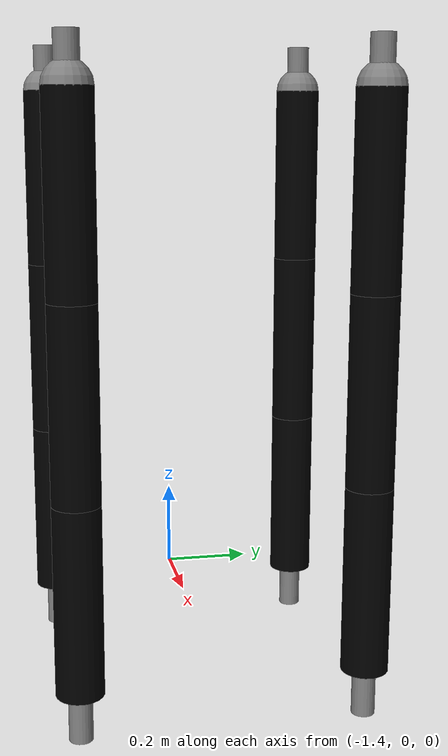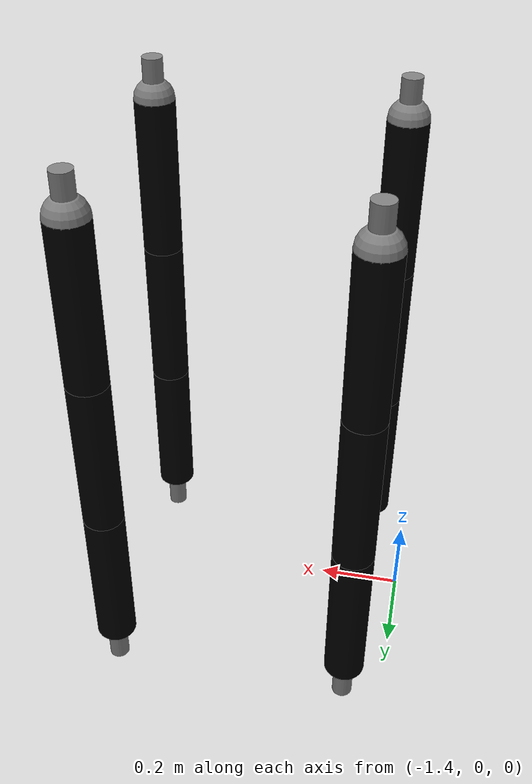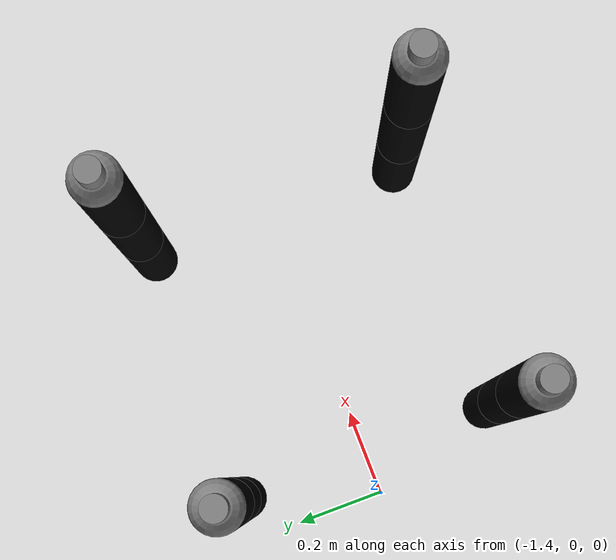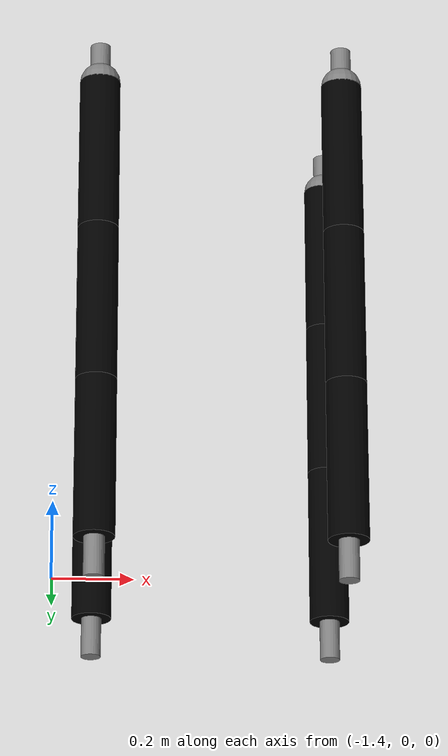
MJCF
<mujoco model="custom_environment">
    <compiler angle="radian" meshdir="assets"/>
    <option cone="elliptic" impratio="10" iterations="50" tolerance="1e-6" solver="Newton"/>
    <asset>
        <!-- 추가적인 자산 (예: 메쉬 파일, 텍스처 등)을 여기 추가할 수 있습니다 -->
    </asset>

    <default>
        <default class="robot_geom">
            <geom type="cylinder" size="0.05 0.2" pos="0 0 0.2" rgba="0 0 0 1" contype="1" conaffinity="1"/>
        </default>
        <default class="guide_geom">
            <geom type="cylinder" size="0.025 0.5" pos="0 0 0.4"/>
        </default>
      <default class="vertical_joint">
            <joint type="slide" axis="0 0 1" pos="0 0 0" range="0 3" armature="0.01" stiffness="5000" damping="10000"/>
        </default>

    </default>

    <worldbody>
        <!-- 로봇 1 -->
        <body name="robot1" pos="-0.7 0.3 0.0" quat="-0.3827 0 0 0.9239">
            <body name="robot1_link1" pos="0 0 0">
                <joint name="robot1_vertical_joint" class="vertical_joint" damping="100000"/>
                <geom name="robot1_link1_geom" class="robot_geom"/>
                <body name="robot1_link2" pos="0 0 0.4">
                    <joint name="robot1_vertical_joint2" class="vertical_joint"/>
                    <geom name="robot1_link2_geom" class="robot_geom" />
                    <body name="robot1_link3" pos="0 0 0.4">
                        <joint name="robot1_vertical_joint3" class="vertical_joint"/>
                        <geom name="robot1_link3_geom" class="robot_geom" />
                        <body name="robot1_end_effector" pos="0 0 0.4">
                            <geom name="robot1_ee_geom" type="sphere" size="0.05" pos="0 0 0"/>
                            <site name="ee_touch_site1" type="sphere" pos="0 0 0" size="0.05" rgba="0 0 0 1"/>
                            <geom name="touch_geom1" type="sphere" size="0.05" pos="0 0 0" rgba="1 0 0 1" contype="1" conaffinity="1"/>
                        </body>
                    </body>
                    <body name="robot1_guide2" pos="0 0 0">
                        <geom name="robot1_guide2_geom" class="guide_geom"/>
                    </body>
                </body>
                <body name="robot1_guide" pos="0 0 0">
                    <geom name="robot1_guide_geom" class="guide_geom"/>
                </body>
            </body>
        </body>
                <!-- 로봇 2 -->
        <body name="robot2" pos="-1.3 0.3 0.0" quat="-0.9239 0 0 0.3827">
            <body name="robot2_link1" pos="0 0 0">
                <joint name="robot2_vertical_joint" class="vertical_joint" damping="100000"/>
                <geom name="robot2_link1_geom" class="robot_geom"/>
                <body name="robot2_link2" pos="0 0 0.4">
                    <joint name="robot2_vertical_joint2" class="vertical_joint"/>
                    <geom name="robot2_link2_geom" class="robot_geom"  />
                    <body name="robot2_link3" pos="0 0 0.4">
                        <joint name="robot2_vertical_joint3" class="vertical_joint"/>
                        <geom name="robot2_link3_geom" class="robot_geom" />
                        <body name="robot2_end_effector" pos="0 0 0.4">
                            <geom name="robot2_ee_geom" type="sphere" size="0.05" pos="0 0 0"/>
                            <site name="ee_touch_site2" type="sphere" pos="0 0 0" size="0.05" rgba="0 0 0 1"/>
                            <geom name="touch_geom2" type="sphere" size="0.05" pos="0 0 0" rgba="1 0 0 1" contype="1" conaffinity="1"/>
                        </body>
                    </body>
                    <body name="robot2_guide2" pos="0 0 0">
                        <geom name="robot2_guide2_geom" class="guide_geom"/>
                    </body>
                </body>
                <body name="robot2_guide" pos="0 0 0">
                    <geom name="robot2_guide_geom" class="guide_geom"/>
                </body>
            </body>
        </body>
                <!-- 로봇 3 -->
        <body name="robot3" pos="-0.7 -0.3 0" quat="0.3827 0 0 0.9239">
            <body name="robot3_link1" pos="0 0 0">
                <joint name="robot3_vertical_joint" class="vertical_joint" damping="100000"/>
                <geom name="robot3_link1_geom" class="robot_geom"/>
                <body name="robot3_link2" pos="0 0 0.4">
                    <joint name="robot3_vertical_joint2" class="vertical_joint"/>
                    <geom name="robot3_link2_geom" class="robot_geom"  />
                    <body name="robot3_link3" pos="0 0 0.4">
                        <joint name="robot3_vertical_joint3" class="vertical_joint"/>
                        <geom name="robot3_link3_geom" class="robot_geom"/>
                        <body name="robot3_end_effector" pos="0 0 0.4">
                            <geom name="robot3_ee_geom" type="sphere" size="0.05" pos="0 0 0"/>
                            <site name="ee_touch_site3" type="sphere" pos="0 0 0" size="0.05" rgba="0 0 0 1"/>
                            <geom name="touch_geom3" type="sphere" size="0.05" pos="0 0 0" rgba="1 0 0 1" contype="1" conaffinity="1"/>
                        </body>
                    </body>
                    <body name="robot3_guide2" pos="0 0 0">
                        <geom name="robot3_guide2_geom" class="guide_geom"/>
                    </body>
                </body>
                <body name="robot3_guide" pos="0 0 0">
                    <geom name="robot3_guide_geom" class="guide_geom"/>
                </body>
            </body>
        </body>
                <!-- 로봇 4 -->
        <body name="robot4" pos="-1.3 -0.3 0" quat="0.9239 0 0 0.3827">
            <body name="robot4_link1" pos="0 0 0">
                <joint name="robot4_vertical_joint" class="vertical_joint" damping="100000"/>
                <geom name="robot4_link1_geom" class="robot_geom"/>
                <body name="robot4_link2" pos="0 0 0.4">
                    <joint name="robot4_vertical_joint2" class="vertical_joint"/>
                    <geom name="robot4_link2_geom" class="robot_geom" />
                    <body name="robot4_link3" pos="0 0 0.4">
                        <joint name="robot4_vertical_joint3" class="vertical_joint"/>
                        <geom name="robot4_link3_geom" class="robot_geom"/>
                        <body name="robot4_end_effector" pos="0 0 0.4">
                            <geom name="robot4_ee_geom" type="sphere" size="0.05" pos="0 0 0"/>
                            <site name="ee_touch_site4" type="sphere" pos="0 0 0" size="0.05" rgba="0 0 0 1"/>
                            <geom name="touch_geom4" type="sphere" size="0.05" pos="0 0 0" rgba="1 0 0 1" contype="1" conaffinity="1"/>
                        </body>
                    </body>
                    <body name="robot4_guide2" pos="0 0 0">
                        <geom name="robot4_guide2_geom" class="guide_geom"/>
                    </body>
                </body>
                <body name="robot4_guide" pos="0 0 0">
                    <geom name="robot4_guide_geom" class="guide_geom"/>
                </body>
            </body>
        </body>
    </worldbody>

    <actuator>
        <!-- 로봇 1 액추에이터 -->
        <position joint="robot1_vertical_joint" name="1_actuator_joint" kp="2000" />
        <position joint="robot1_vertical_joint2" name="1_actuator_joint2" kp="10000"/>
        <position joint="robot1_vertical_joint3" name="1_actuator_joint3" kp="10000"/>
         <!-- 로봇 2 액추에이터 -->
        <position joint="robot2_vertical_joint" name="2_actuator_joint" kp="2000"/>
        <position joint="robot2_vertical_joint2" name="2_actuator_joint2" kp="10000"/>
        <position joint="robot2_vertical_joint3" name="2_actuator_joint3" kp="10000"/>
         <!-- 로봇 2 액추에이터 -->
        <position joint="robot3_vertical_joint" name="3_actuator_joint" kp="2000"/>
        <position joint="robot3_vertical_joint2" name="3_actuator_joint2" kp="10000"/>
        <position joint="robot3_vertical_joint3" name="3_actuator_joint3" kp="10000"/>
         <!-- 로봇 2 액추에이터 -->
        <position joint="robot4_vertical_joint" name="4_actuator_joint" kp="2000"/>
        <position joint="robot4_vertical_joint2" name="4_actuator_joint2" kp="10000"/>
        <position joint="robot4_vertical_joint3" name="4_actuator_joint3" kp="10000"/>

    </actuator>

    <sensor>
        <!-- 터치 센서 -->
        <touch name="touch_sensor1" site="ee_touch_site1"/>
        <touch name="touch_sensor2" site="ee_touch_site2"/>
        <touch name="touch_sensor3" site="ee_touch_site3"/>
        <touch name="touch_sensor4" site="ee_touch_site4"/>

    </sensor>

    <contact>
        <!-- 로봇 1 충돌 쌍 -->
        <pair geom1="robot1_link1_geom" geom2="robot1_link2_geom"/>
        <pair geom1="robot1_link2_geom" geom2="robot1_link3_geom"/>
        <!-- 로봇 2 충돌 쌍 -->
        <pair geom1="robot2_link1_geom" geom2="robot2_link2_geom"/>
        <pair geom1="robot2_link2_geom" geom2="robot2_link3_geom"/>
        <!-- 로봇 3 충돌 쌍 -->
        <pair geom1="robot3_link1_geom" geom2="robot3_link2_geom"/>
        <pair geom1="robot3_link2_geom" geom2="robot3_link3_geom"/>
        <!-- 로봇 4 충돌 쌍 -->
        <pair geom1="robot4_link1_geom" geom2="robot4_link2_geom"/>
        <pair geom1="robot4_link2_geom" geom2="robot4_link3_geom"/>

    </contact>

</mujoco>
